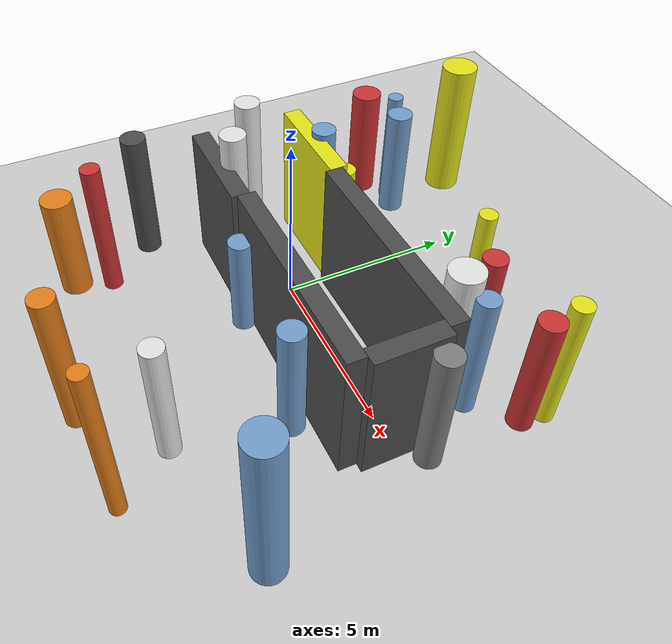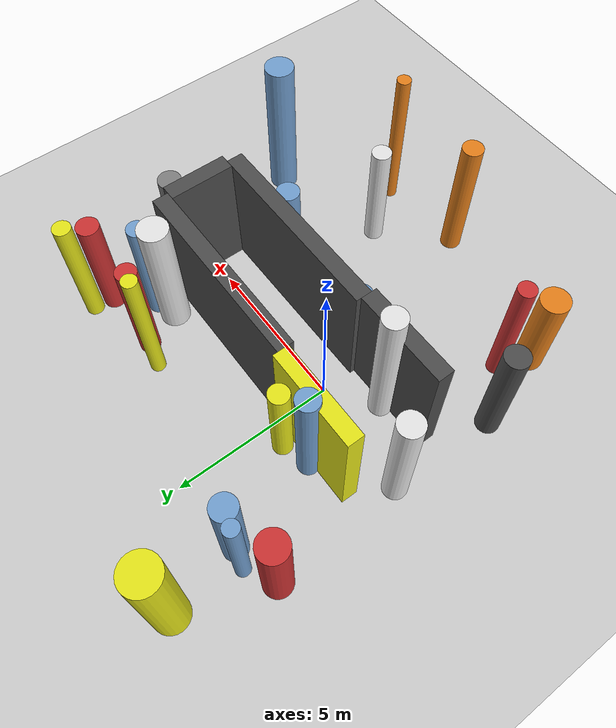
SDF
<?xml version='1.0'?>
<sdf version='1.6'>
  <world name='routeA_rl_v1__dense_recovery__rl_train__cul_de_sac_trap__000081'>
    <!-- Sun light -->
    <light name='sun' type='directional'>
      <cast_shadows>1</cast_shadows>
      <pose>0 0 10 0 0 0</pose>
      <diffuse>0.8 0.8 0.8 1</diffuse>
      <specular>0.2 0.2 0.2 1</specular>
      <attenuation>
        <range>1000</range>
        <constant>0.9</constant>
        <linear>0.01</linear>
        <quadratic>0.001</quadratic>
      </attenuation>
      <direction>-0.5 0.1 -0.9</direction>
    </light>

    <!-- Ground plane -->
    <model name='ground_plane'>
      <static>1</static>
      <link name='link'>
        <collision name='collision'>
          <geometry>
            <plane>
              <normal>0 0 1</normal>
              <size>100 100</size>
            </plane>
          </geometry>
          <surface>
            <contact>
              <collide_bitmask>65535</collide_bitmask>
              <ode/>
            </contact>
            <friction>
              <ode>
                <mu>100</mu>
                <mu2>50</mu2>
              </ode>
              <torsional><ode/></torsional>
            </friction>
            <bounce/>
          </surface>
          <max_contacts>10</max_contacts>
        </collision>
        <visual name='visual'>
          <cast_shadows>0</cast_shadows>
          <geometry>
            <plane>
              <normal>0 0 1</normal>
              <size>100 100</size>
            </plane>
          </geometry>
          <material>
            <script>
              <uri>file://media/materials/scripts/gazebo.material</uri>
              <n>Gazebo/Grey</n>
            </script>
          </material>
        </visual>
      </link>
    </model>

    <!-- Environment -->
    <magnetic_field>6e-06 2.3e-05 -4.2e-05</magnetic_field>
    <atmosphere type='adiabatic'/>
    <physics name='default_physics' default='0' type='ode'>
      <gravity>0 0 -9.8</gravity>
      <max_step_size>0.004</max_step_size>
      <real_time_factor>1</real_time_factor>
      <real_time_update_rate>250</real_time_update_rate>
    </physics>
    <scene>
      <ambient>0.4 0.4 0.4 1</ambient>
      <background>0.7 0.7 0.7 1</background>
      <shadows>1</shadows>
    </scene>
    <wind/>
    <spherical_coordinates>
      <surface_model>EARTH_WGS84</surface_model>
      <latitude_deg>0</latitude_deg>
      <longitude_deg>0</longitude_deg>
      <elevation>0</elevation>
      <heading_deg>0</heading_deg>
    </spherical_coordinates>

    <!-- ============ OBSTACLES (29) ============ -->
    <model name='trap_side_l'>
      <static>1</static>
      <link name='link'>
        <visual name='visual'>
          <geometry>
            <box>
              <size>6.0000 0.5000 4.0000</size>
            </box>
          </geometry>
          <material>
            <script>
              <n>Gazebo/DarkGrey</n>
              <uri>file://media/materials/scripts/gazebo.material</uri>
            </script>
            <ambient>0.3 0.3 0.3 1</ambient>
          </material>
        </visual>
        <collision name='collision'>
          <geometry>
            <box>
              <size>6.0000 0.5000 4.0000</size>
            </box>
          </geometry>
          <max_contacts>10</max_contacts>
          <surface>
            <contact><ode/></contact>
            <bounce/>
            <friction>
              <ode><mu>1</mu><mu2>1</mu2></ode>
              <torsional><ode/></torsional>
            </friction>
          </surface>
        </collision>
      </link>
      <pose>3.0000 -1.2500 2.0000 0 0 0.0000</pose>
    </model>

    <model name='trap_side_r'>
      <static>1</static>
      <link name='link'>
        <visual name='visual'>
          <geometry>
            <box>
              <size>6.0000 0.5000 4.0000</size>
            </box>
          </geometry>
          <material>
            <script>
              <n>Gazebo/DarkGrey</n>
              <uri>file://media/materials/scripts/gazebo.material</uri>
            </script>
            <ambient>0.3 0.3 0.3 1</ambient>
          </material>
        </visual>
        <collision name='collision'>
          <geometry>
            <box>
              <size>6.0000 0.5000 4.0000</size>
            </box>
          </geometry>
          <max_contacts>10</max_contacts>
          <surface>
            <contact><ode/></contact>
            <bounce/>
            <friction>
              <ode><mu>1</mu><mu2>1</mu2></ode>
              <torsional><ode/></torsional>
            </friction>
          </surface>
        </collision>
      </link>
      <pose>3.0000 1.2500 2.0000 0 0 0.0000</pose>
    </model>

    <model name='trap_back'>
      <static>1</static>
      <link name='link'>
        <visual name='visual'>
          <geometry>
            <box>
              <size>0.5000 2.0000 4.0000</size>
            </box>
          </geometry>
          <material>
            <script>
              <n>Gazebo/DarkGrey</n>
              <uri>file://media/materials/scripts/gazebo.material</uri>
            </script>
            <ambient>0.3 0.3 0.3 1</ambient>
          </material>
        </visual>
        <collision name='collision'>
          <geometry>
            <box>
              <size>0.5000 2.0000 4.0000</size>
            </box>
          </geometry>
          <max_contacts>10</max_contacts>
          <surface>
            <contact><ode/></contact>
            <bounce/>
            <friction>
              <ode><mu>1</mu><mu2>1</mu2></ode>
              <torsional><ode/></torsional>
            </friction>
          </surface>
        </collision>
      </link>
      <pose>6.0000 0.0000 2.0000 0 0 0.0000</pose>
    </model>

    <model name='trap_funnel_l'>
      <static>1</static>
      <link name='link'>
        <visual name='visual'>
          <geometry>
            <box>
              <size>3.0000 0.5000 4.0000</size>
            </box>
          </geometry>
          <material>
            <script>
              <n>Gazebo/DarkGrey</n>
              <uri>file://media/materials/scripts/gazebo.material</uri>
            </script>
            <ambient>0.3 0.3 0.3 1</ambient>
          </material>
        </visual>
        <collision name='collision'>
          <geometry>
            <box>
              <size>3.0000 0.5000 4.0000</size>
            </box>
          </geometry>
          <max_contacts>10</max_contacts>
          <surface>
            <contact><ode/></contact>
            <bounce/>
            <friction>
              <ode><mu>1</mu><mu2>1</mu2></ode>
              <torsional><ode/></torsional>
            </friction>
          </surface>
        </collision>
      </link>
      <pose>-1.5000 -1.4000 2.0000 0 0 0.0000</pose>
    </model>

    <model name='trap_funnel_r'>
      <static>1</static>
      <link name='link'>
        <visual name='visual'>
          <geometry>
            <box>
              <size>3.0000 0.5000 4.0000</size>
            </box>
          </geometry>
          <material>
            <script>
              <n>Gazebo/Yellow</n>
              <uri>file://media/materials/scripts/gazebo.material</uri>
            </script>
            <ambient>0.9 0.9 0.1 1</ambient>
          </material>
        </visual>
        <collision name='collision'>
          <geometry>
            <box>
              <size>3.0000 0.5000 4.0000</size>
            </box>
          </geometry>
          <max_contacts>10</max_contacts>
          <surface>
            <contact><ode/></contact>
            <bounce/>
            <friction>
              <ode><mu>1</mu><mu2>1</mu2></ode>
              <torsional><ode/></torsional>
            </friction>
          </surface>
        </collision>
      </link>
      <pose>-1.5000 1.4000 2.0000 0 0 0.0000</pose>
    </model>

    <model name='trap_scatter_0'>
      <static>1</static>
      <link name='link'>
        <visual name='visual'>
          <geometry>
            <cylinder>
              <radius>0.4384</radius>
              <length>3.2200</length>
            </cylinder>
          </geometry>
          <material>
            <script>
              <n>Gazebo/Orange</n>
              <uri>file://media/materials/scripts/gazebo.material</uri>
            </script>
            <ambient>0.9 0.5 0.1 1</ambient>
          </material>
        </visual>
        <collision name='collision'>
          <geometry>
            <cylinder>
              <radius>0.4384</radius>
              <length>3.2200</length>
            </cylinder>
          </geometry>
          <max_contacts>10</max_contacts>
          <surface>
            <contact><ode/></contact>
            <bounce/>
            <friction>
              <ode><mu>1</mu><mu2>1</mu2></ode>
              <torsional><ode/></torsional>
            </friction>
          </surface>
        </collision>
      </link>
      <pose>-2.8235 -5.6452 1.6100 0 0 0.0000</pose>
    </model>

    <model name='trap_scatter_1'>
      <static>1</static>
      <link name='link'>
        <visual name='visual'>
          <geometry>
            <cylinder>
              <radius>0.3722</radius>
              <length>4.3004</length>
            </cylinder>
          </geometry>
          <material>
            <script>
              <n>Gazebo/White</n>
              <uri>file://media/materials/scripts/gazebo.material</uri>
            </script>
            <ambient>0.9 0.9 0.9 1</ambient>
          </material>
        </visual>
        <collision name='collision'>
          <geometry>
            <cylinder>
              <radius>0.3722</radius>
              <length>4.3004</length>
            </cylinder>
          </geometry>
          <max_contacts>10</max_contacts>
          <surface>
            <contact><ode/></contact>
            <bounce/>
            <friction>
              <ode><mu>1</mu><mu2>1</mu2></ode>
              <torsional><ode/></torsional>
            </friction>
          </surface>
        </collision>
      </link>
      <pose>-3.5204 0.2212 2.1502 0 0 0.0000</pose>
    </model>

    <model name='trap_scatter_2'>
      <static>1</static>
      <link name='link'>
        <visual name='visual'>
          <geometry>
            <cylinder>
              <radius>0.3255</radius>
              <length>4.3428</length>
            </cylinder>
          </geometry>
          <material>
            <script>
              <n>Gazebo/Orange</n>
              <uri>file://media/materials/scripts/gazebo.material</uri>
            </script>
            <ambient>0.9 0.5 0.1 1</ambient>
          </material>
        </visual>
        <collision name='collision'>
          <geometry>
            <cylinder>
              <radius>0.3255</radius>
              <length>4.3428</length>
            </cylinder>
          </geometry>
          <max_contacts>10</max_contacts>
          <surface>
            <contact><ode/></contact>
            <bounce/>
            <friction>
              <ode><mu>1</mu><mu2>1</mu2></ode>
              <torsional><ode/></torsional>
            </friction>
          </surface>
        </collision>
      </link>
      <pose>1.9034 -6.7672 2.1714 0 0 0.0000</pose>
    </model>

    <model name='trap_scatter_3'>
      <static>1</static>
      <link name='link'>
        <visual name='visual'>
          <geometry>
            <cylinder>
              <radius>0.2321</radius>
              <length>4.4986</length>
            </cylinder>
          </geometry>
          <material>
            <script>
              <n>Gazebo/Yellow</n>
              <uri>file://media/materials/scripts/gazebo.material</uri>
            </script>
            <ambient>0.9 0.9 0.1 1</ambient>
          </material>
        </visual>
        <collision name='collision'>
          <geometry>
            <cylinder>
              <radius>0.2321</radius>
              <length>4.4986</length>
            </cylinder>
          </geometry>
          <max_contacts>10</max_contacts>
          <surface>
            <contact><ode/></contact>
            <bounce/>
            <friction>
              <ode><mu>1</mu><mu2>1</mu2></ode>
              <torsional><ode/></torsional>
            </friction>
          </surface>
        </collision>
      </link>
      <pose>3.6948 3.4598 2.2493 0 0 0.0000</pose>
    </model>

    <model name='trap_scatter_4'>
      <static>1</static>
      <link name='link'>
        <visual name='visual'>
          <geometry>
            <cylinder>
              <radius>0.5268</radius>
              <length>4.3185</length>
            </cylinder>
          </geometry>
          <material>
            <script>
              <n>Gazebo/Yellow</n>
              <uri>file://media/materials/scripts/gazebo.material</uri>
            </script>
            <ambient>0.9 0.9 0.1 1</ambient>
          </material>
        </visual>
        <collision name='collision'>
          <geometry>
            <cylinder>
              <radius>0.5268</radius>
              <length>4.3185</length>
            </cylinder>
          </geometry>
          <max_contacts>10</max_contacts>
          <surface>
            <contact><ode/></contact>
            <bounce/>
            <friction>
              <ode><mu>1</mu><mu2>1</mu2></ode>
              <torsional><ode/></torsional>
            </friction>
          </surface>
        </collision>
      </link>
      <pose>-2.6923 6.9096 2.1592 0 0 0.0000</pose>
    </model>

    <model name='trap_scatter_5'>
      <static>1</static>
      <link name='link'>
        <visual name='visual'>
          <geometry>
            <cylinder>
              <radius>0.3624</radius>
              <length>3.9609</length>
            </cylinder>
          </geometry>
          <material>
            <script>
              <n>Gazebo/DarkGrey</n>
              <uri>file://media/materials/scripts/gazebo.material</uri>
            </script>
            <ambient>0.3 0.3 0.3 1</ambient>
          </material>
        </visual>
        <collision name='collision'>
          <geometry>
            <cylinder>
              <radius>0.3624</radius>
              <length>3.9609</length>
            </cylinder>
          </geometry>
          <max_contacts>10</max_contacts>
          <surface>
            <contact><ode/></contact>
            <bounce/>
            <friction>
              <ode><mu>1</mu><mu2>1</mu2></ode>
              <torsional><ode/></torsional>
            </friction>
          </surface>
        </collision>
      </link>
      <pose>-3.6333 -3.1800 1.9804 0 0 0.0000</pose>
    </model>

    <model name='trap_scatter_6'>
      <static>1</static>
      <link name='link'>
        <visual name='visual'>
          <geometry>
            <cylinder>
              <radius>0.3524</radius>
              <length>3.5562</length>
            </cylinder>
          </geometry>
          <material>
            <script>
              <n>Gazebo/Blue</n>
              <uri>file://media/materials/scripts/gazebo.material</uri>
            </script>
            <ambient>0.447 0.624 0.812 1</ambient>
          </material>
        </visual>
        <collision name='collision'>
          <geometry>
            <cylinder>
              <radius>0.3524</radius>
              <length>3.5562</length>
            </cylinder>
          </geometry>
          <max_contacts>10</max_contacts>
          <surface>
            <contact><ode/></contact>
            <bounce/>
            <friction>
              <ode><mu>1</mu><mu2>1</mu2></ode>
              <torsional><ode/></torsional>
            </friction>
          </surface>
        </collision>
      </link>
      <pose>4.3405 -1.9566 1.7781 0 0 0.0000</pose>
    </model>

    <model name='trap_scatter_7'>
      <static>1</static>
      <link name='link'>
        <visual name='visual'>
          <geometry>
            <cylinder>
              <radius>0.3255</radius>
              <length>3.0020</length>
            </cylinder>
          </geometry>
          <material>
            <script>
              <n>Gazebo/Blue</n>
              <uri>file://media/materials/scripts/gazebo.material</uri>
            </script>
            <ambient>0.447 0.624 0.812 1</ambient>
          </material>
        </visual>
        <collision name='collision'>
          <geometry>
            <cylinder>
              <radius>0.3255</radius>
              <length>3.0020</length>
            </cylinder>
          </geometry>
          <max_contacts>10</max_contacts>
          <surface>
            <contact><ode/></contact>
            <bounce/>
            <friction>
              <ode><mu>1</mu><mu2>1</mu2></ode>
              <torsional><ode/></torsional>
            </friction>
          </surface>
        </collision>
      </link>
      <pose>0.5861 -1.7079 1.5010 0 0 0.0000</pose>
    </model>

    <model name='trap_scatter_8'>
      <static>1</static>
      <link name='link'>
        <visual name='visual'>
          <geometry>
            <cylinder>
              <radius>0.3167</radius>
              <length>3.8211</length>
            </cylinder>
          </geometry>
          <material>
            <script>
              <n>Gazebo/Red</n>
              <uri>file://media/materials/scripts/gazebo.material</uri>
            </script>
            <ambient>0.8 0.2 0.2 1</ambient>
          </material>
        </visual>
        <collision name='collision'>
          <geometry>
            <cylinder>
              <radius>0.3167</radius>
              <length>3.8211</length>
            </cylinder>
          </geometry>
          <max_contacts>10</max_contacts>
          <surface>
            <contact><ode/></contact>
            <bounce/>
            <friction>
              <ode><mu>1</mu><mu2>1</mu2></ode>
              <torsional><ode/></torsional>
            </friction>
          </surface>
        </collision>
      </link>
      <pose>4.4699 3.2688 1.9106 0 0 0.0000</pose>
    </model>

    <model name='trap_scatter_10'>
      <static>1</static>
      <link name='link'>
        <visual name='visual'>
          <geometry>
            <cylinder>
              <radius>0.3723</radius>
              <length>3.4583</length>
            </cylinder>
          </geometry>
          <material>
            <script>
              <n>Gazebo/Blue</n>
              <uri>file://media/materials/scripts/gazebo.material</uri>
            </script>
            <ambient>0.447 0.624 0.812 1</ambient>
          </material>
        </visual>
        <collision name='collision'>
          <geometry>
            <cylinder>
              <radius>0.3723</radius>
              <length>3.4583</length>
            </cylinder>
          </geometry>
          <max_contacts>10</max_contacts>
          <surface>
            <contact><ode/></contact>
            <bounce/>
            <friction>
              <ode><mu>1</mu><mu2>1</mu2></ode>
              <torsional><ode/></torsional>
            </friction>
          </surface>
        </collision>
      </link>
      <pose>-2.2832 4.6642 1.7291 0 0 0.0000</pose>
    </model>

    <model name='trap_scatter_11'>
      <static>1</static>
      <link name='link'>
        <visual name='visual'>
          <geometry>
            <cylinder>
              <radius>0.2268</radius>
              <length>3.6893</length>
            </cylinder>
          </geometry>
          <material>
            <script>
              <n>Gazebo/Blue</n>
              <uri>file://media/materials/scripts/gazebo.material</uri>
            </script>
            <ambient>0.447 0.624 0.812 1</ambient>
          </material>
        </visual>
        <collision name='collision'>
          <geometry>
            <cylinder>
              <radius>0.2268</radius>
              <length>3.6893</length>
            </cylinder>
          </geometry>
          <max_contacts>10</max_contacts>
          <surface>
            <contact><ode/></contact>
            <bounce/>
            <friction>
              <ode><mu>1</mu><mu2>1</mu2></ode>
              <torsional><ode/></torsional>
            </friction>
          </surface>
        </collision>
      </link>
      <pose>-2.8443 4.8152 1.8446 0 0 0.0000</pose>
    </model>

    <model name='trap_scatter_12'>
      <static>1</static>
      <link name='link'>
        <visual name='visual'>
          <geometry>
            <cylinder>
              <radius>0.2976</radius>
              <length>3.8544</length>
            </cylinder>
          </geometry>
          <material>
            <script>
              <n>Gazebo/Blue</n>
              <uri>file://media/materials/scripts/gazebo.material</uri>
            </script>
            <ambient>0.447 0.624 0.812 1</ambient>
          </material>
        </visual>
        <collision name='collision'>
          <geometry>
            <cylinder>
              <radius>0.2976</radius>
              <length>3.8544</length>
            </cylinder>
          </geometry>
          <max_contacts>10</max_contacts>
          <surface>
            <contact><ode/></contact>
            <bounce/>
            <friction>
              <ode><mu>1</mu><mu2>1</mu2></ode>
              <torsional><ode/></torsional>
            </friction>
          </surface>
        </collision>
      </link>
      <pose>5.5474 2.3187 1.9272 0 0 0.0000</pose>
    </model>

    <model name='trap_scatter_13'>
      <static>1</static>
      <link name='link'>
        <visual name='visual'>
          <geometry>
            <cylinder>
              <radius>0.2190</radius>
              <length>4.9505</length>
            </cylinder>
          </geometry>
          <material>
            <script>
              <n>Gazebo/Orange</n>
              <uri>file://media/materials/scripts/gazebo.material</uri>
            </script>
            <ambient>0.9 0.5 0.1 1</ambient>
          </material>
        </visual>
        <collision name='collision'>
          <geometry>
            <cylinder>
              <radius>0.2190</radius>
              <length>4.9505</length>
            </cylinder>
          </geometry>
          <max_contacts>10</max_contacts>
          <surface>
            <contact><ode/></contact>
            <bounce/>
            <friction>
              <ode><mu>1</mu><mu2>1</mu2></ode>
              <torsional><ode/></torsional>
            </friction>
          </surface>
        </collision>
      </link>
      <pose>4.7561 -6.5251 2.4752 0 0 0.0000</pose>
    </model>

    <model name='trap_scatter_14'>
      <static>1</static>
      <link name='link'>
        <visual name='visual'>
          <geometry>
            <cylinder>
              <radius>0.3599</radius>
              <length>4.9031</length>
            </cylinder>
          </geometry>
          <material>
            <script>
              <n>Gazebo/White</n>
              <uri>file://media/materials/scripts/gazebo.material</uri>
            </script>
            <ambient>0.9 0.9 0.9 1</ambient>
          </material>
        </visual>
        <collision name='collision'>
          <geometry>
            <cylinder>
              <radius>0.3599</radius>
              <length>4.9031</length>
            </cylinder>
          </geometry>
          <max_contacts>10</max_contacts>
          <surface>
            <contact><ode/></contact>
            <bounce/>
            <friction>
              <ode><mu>1</mu><mu2>1</mu2></ode>
              <torsional><ode/></torsional>
            </friction>
          </surface>
        </collision>
      </link>
      <pose>-1.3474 -1.0452 2.4516 0 0 0.0000</pose>
    </model>

    <model name='trap_scatter_15'>
      <static>1</static>
      <link name='link'>
        <visual name='visual'>
          <geometry>
            <cylinder>
              <radius>0.4347</radius>
              <length>3.4932</length>
            </cylinder>
          </geometry>
          <material>
            <script>
              <n>Gazebo/Red</n>
              <uri>file://media/materials/scripts/gazebo.material</uri>
            </script>
            <ambient>0.8 0.2 0.2 1</ambient>
          </material>
        </visual>
        <collision name='collision'>
          <geometry>
            <cylinder>
              <radius>0.4347</radius>
              <length>3.4932</length>
            </cylinder>
          </geometry>
          <max_contacts>10</max_contacts>
          <surface>
            <contact><ode/></contact>
            <bounce/>
            <friction>
              <ode><mu>1</mu><mu2>1</mu2></ode>
              <torsional><ode/></torsional>
            </friction>
          </surface>
        </collision>
      </link>
      <pose>-3.6786 4.2825 1.7466 0 0 0.0000</pose>
    </model>

    <model name='trap_scatter_16'>
      <static>1</static>
      <link name='link'>
        <visual name='visual'>
          <geometry>
            <cylinder>
              <radius>0.4578</radius>
              <length>4.2896</length>
            </cylinder>
          </geometry>
          <material>
            <script>
              <n>Gazebo/White</n>
              <uri>file://media/materials/scripts/gazebo.material</uri>
            </script>
            <ambient>0.9 0.9 0.9 1</ambient>
          </material>
        </visual>
        <collision name='collision'>
          <geometry>
            <cylinder>
              <radius>0.4578</radius>
              <length>4.2896</length>
            </cylinder>
          </geometry>
          <max_contacts>10</max_contacts>
          <surface>
            <contact><ode/></contact>
            <bounce/>
            <friction>
              <ode><mu>1</mu><mu2>1</mu2></ode>
              <torsional><ode/></torsional>
            </friction>
          </surface>
        </collision>
      </link>
      <pose>4.9350 2.0764 2.1448 0 0 0.0000</pose>
    </model>

    <model name='trap_scatter_17'>
      <static>1</static>
      <link name='link'>
        <visual name='visual'>
          <geometry>
            <cylinder>
              <radius>0.3504</radius>
              <length>3.8356</length>
            </cylinder>
          </geometry>
          <material>
            <script>
              <n>Gazebo/Grey</n>
              <uri>file://media/materials/scripts/gazebo.material</uri>
            </script>
            <ambient>0.5 0.5 0.5 1</ambient>
          </material>
        </visual>
        <collision name='collision'>
          <geometry>
            <cylinder>
              <radius>0.3504</radius>
              <length>3.8356</length>
            </cylinder>
          </geometry>
          <max_contacts>10</max_contacts>
          <surface>
            <contact><ode/></contact>
            <bounce/>
            <friction>
              <ode><mu>1</mu><mu2>1</mu2></ode>
              <torsional><ode/></torsional>
            </friction>
          </surface>
        </collision>
      </link>
      <pose>6.5411 0.6500 1.9178 0 0 0.0000</pose>
    </model>

    <model name='trap_scatter_18'>
      <static>1</static>
      <link name='link'>
        <visual name='visual'>
          <geometry>
            <cylinder>
              <radius>0.3033</radius>
              <length>3.7811</length>
            </cylinder>
          </geometry>
          <material>
            <script>
              <n>Gazebo/White</n>
              <uri>file://media/materials/scripts/gazebo.material</uri>
            </script>
            <ambient>0.9 0.9 0.9 1</ambient>
          </material>
        </visual>
        <collision name='collision'>
          <geometry>
            <cylinder>
              <radius>0.3033</radius>
              <length>3.7811</length>
            </cylinder>
          </geometry>
          <max_contacts>10</max_contacts>
          <surface>
            <contact><ode/></contact>
            <bounce/>
            <friction>
              <ode><mu>1</mu><mu2>1</mu2></ode>
              <torsional><ode/></torsional>
            </friction>
          </surface>
        </collision>
      </link>
      <pose>3.7299 -4.9436 1.8905 0 0 0.0000</pose>
    </model>

    <model name='trap_scatter_19'>
      <static>1</static>
      <link name='link'>
        <visual name='visual'>
          <geometry>
            <cylinder>
              <radius>0.3057</radius>
              <length>3.3218</length>
            </cylinder>
          </geometry>
          <material>
            <script>
              <n>Gazebo/Yellow</n>
              <uri>file://media/materials/scripts/gazebo.material</uri>
            </script>
            <ambient>0.9 0.9 0.1 1</ambient>
          </material>
        </visual>
        <collision name='collision'>
          <geometry>
            <cylinder>
              <radius>0.3057</radius>
              <length>3.3218</length>
            </cylinder>
          </geometry>
          <max_contacts>10</max_contacts>
          <surface>
            <contact><ode/></contact>
            <bounce/>
            <friction>
              <ode><mu>1</mu><mu2>1</mu2></ode>
              <torsional><ode/></torsional>
            </friction>
          </surface>
        </collision>
      </link>
      <pose>-0.6624 1.9651 1.6609 0 0 0.0000</pose>
    </model>

    <model name='trap_scatter_20'>
      <static>1</static>
      <link name='link'>
        <visual name='visual'>
          <geometry>
            <cylinder>
              <radius>0.3439</radius>
              <length>3.6829</length>
            </cylinder>
          </geometry>
          <material>
            <script>
              <n>Gazebo/Red</n>
              <uri>file://media/materials/scripts/gazebo.material</uri>
            </script>
            <ambient>0.8 0.2 0.2 1</ambient>
          </material>
        </visual>
        <collision name='collision'>
          <geometry>
            <cylinder>
              <radius>0.3439</radius>
              <length>3.6829</length>
            </cylinder>
          </geometry>
          <max_contacts>10</max_contacts>
          <surface>
            <contact><ode/></contact>
            <bounce/>
            <friction>
              <ode><mu>1</mu><mu2>1</mu2></ode>
              <torsional><ode/></torsional>
            </friction>
          </surface>
        </collision>
      </link>
      <pose>6.5744 3.3228 1.8415 0 0 0.0000</pose>
    </model>

    <model name='trap_scatter_21'>
      <static>1</static>
      <link name='link'>
        <visual name='visual'>
          <geometry>
            <cylinder>
              <radius>0.2744</radius>
              <length>4.0120</length>
            </cylinder>
          </geometry>
          <material>
            <script>
              <n>Gazebo/Yellow</n>
              <uri>file://media/materials/scripts/gazebo.material</uri>
            </script>
            <ambient>0.9 0.9 0.1 1</ambient>
          </material>
        </visual>
        <collision name='collision'>
          <geometry>
            <cylinder>
              <radius>0.2744</radius>
              <length>4.0120</length>
            </cylinder>
          </geometry>
          <max_contacts>10</max_contacts>
          <surface>
            <contact><ode/></contact>
            <bounce/>
            <friction>
              <ode><mu>1</mu><mu2>1</mu2></ode>
              <torsional><ode/></torsional>
            </friction>
          </surface>
        </collision>
      </link>
      <pose>6.6596 3.9775 2.0060 0 0 0.0000</pose>
    </model>

    <model name='trap_scatter_22'>
      <static>1</static>
      <link name='link'>
        <visual name='visual'>
          <geometry>
            <cylinder>
              <radius>0.4513</radius>
              <length>4.9133</length>
            </cylinder>
          </geometry>
          <material>
            <script>
              <n>Gazebo/Blue</n>
              <uri>file://media/materials/scripts/gazebo.material</uri>
            </script>
            <ambient>0.447 0.624 0.812 1</ambient>
          </material>
        </visual>
        <collision name='collision'>
          <geometry>
            <cylinder>
              <radius>0.4513</radius>
              <length>4.9133</length>
            </cylinder>
          </geometry>
          <max_contacts>10</max_contacts>
          <surface>
            <contact><ode/></contact>
            <bounce/>
            <friction>
              <ode><mu>1</mu><mu2>1</mu2></ode>
              <torsional><ode/></torsional>
            </friction>
          </surface>
        </collision>
      </link>
      <pose>7.4522 -3.9312 2.4566 0 0 0.0000</pose>
    </model>

    <model name='trap_scatter_23'>
      <static>1</static>
      <link name='link'>
        <visual name='visual'>
          <geometry>
            <cylinder>
              <radius>0.2731</radius>
              <length>4.1755</length>
            </cylinder>
          </geometry>
          <material>
            <script>
              <n>Gazebo/Red</n>
              <uri>file://media/materials/scripts/gazebo.material</uri>
            </script>
            <ambient>0.8 0.2 0.2 1</ambient>
          </material>
        </visual>
        <collision name='collision'>
          <geometry>
            <cylinder>
              <radius>0.2731</radius>
              <length>4.1755</length>
            </cylinder>
          </geometry>
          <max_contacts>10</max_contacts>
          <surface>
            <contact><ode/></contact>
            <bounce/>
            <friction>
              <ode><mu>1</mu><mu2>1</mu2></ode>
              <torsional><ode/></torsional>
            </friction>
          </surface>
        </collision>
      </link>
      <pose>-2.4323 -4.6538 2.0877 0 0 0.0000</pose>
    </model>

    <model name='trap_scatter_24'>
      <static>1</static>
      <link name='link'>
        <visual name='visual'>
          <geometry>
            <cylinder>
              <radius>0.3407</radius>
              <length>4.1720</length>
            </cylinder>
          </geometry>
          <material>
            <script>
              <n>Gazebo/Blue</n>
              <uri>file://media/materials/scripts/gazebo.material</uri>
            </script>
            <ambient>0.447 0.624 0.812 1</ambient>
          </material>
        </visual>
        <collision name='collision'>
          <geometry>
            <cylinder>
              <radius>0.3407</radius>
              <length>4.1720</length>
            </cylinder>
          </geometry>
          <max_contacts>10</max_contacts>
          <surface>
            <contact><ode/></contact>
            <bounce/>
            <friction>
              <ode><mu>1</mu><mu2>1</mu2></ode>
              <torsional><ode/></torsional>
            </friction>
          </surface>
        </collision>
      </link>
      <pose>-1.5510 1.7160 2.0860 0 0 0.0000</pose>
    </model>

    <!-- GUI camera -->
    <gui fullscreen='0'>
      <camera name='user_camera'>
        <pose>-15 0 18 0 0.85 0.15</pose>
        <view_controller>orbit</view_controller>
        <projection_type>perspective</projection_type>
      </camera>
    </gui>
  </world>
</sdf>
